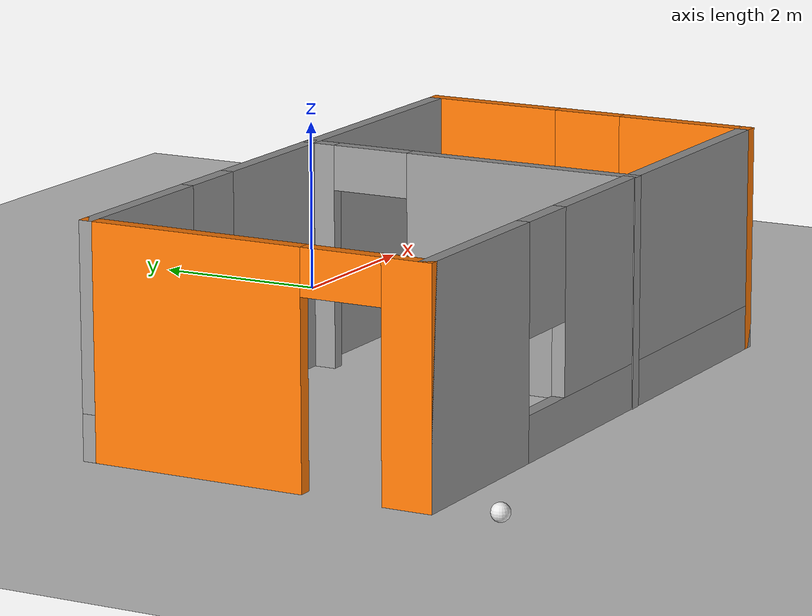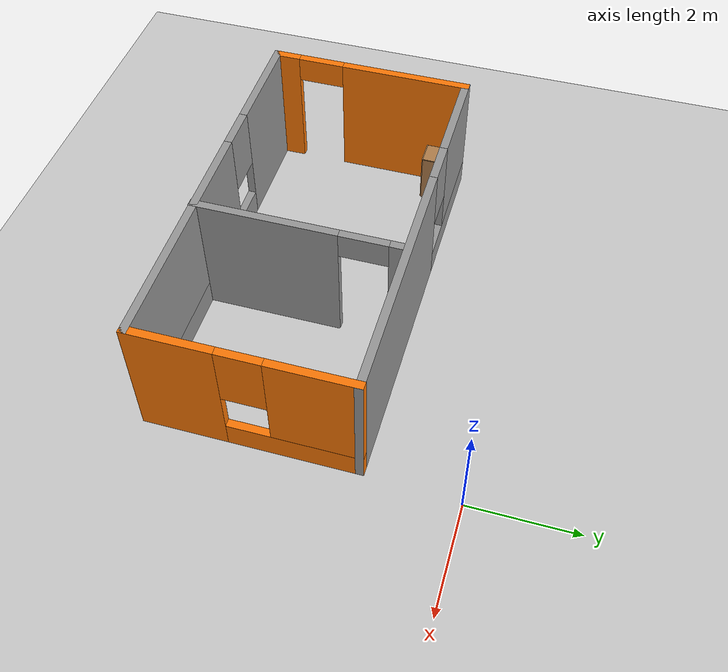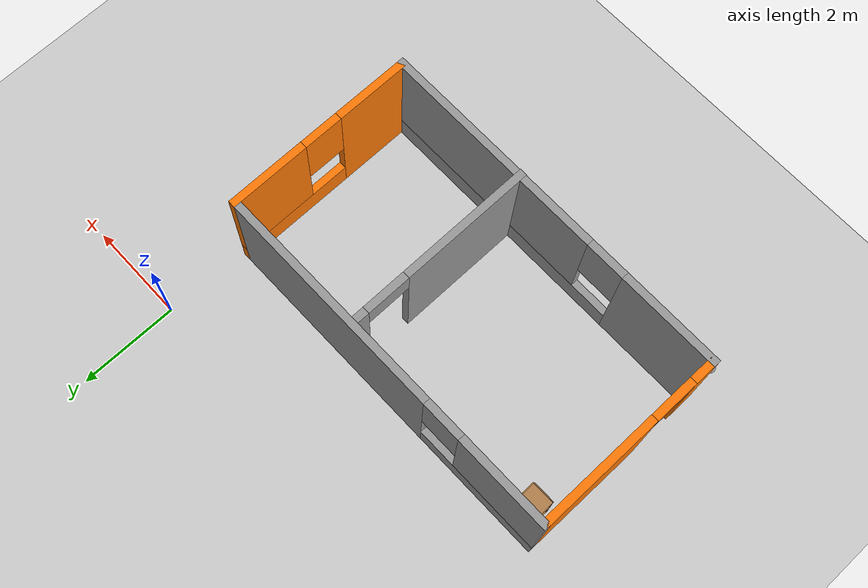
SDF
<sdf version="1.7">
 <world name="default">
  <model name="ground_plane">
   <static>1</static>
   <link name="link">
    <collision name="collision">
     <geometry><plane><normal>0 0 1</normal><size>100 100</size></plane></geometry>
     <surface>
      <contact><collide_bitmask>65535</collide_bitmask></contact>
      <friction><ode><mu>100</mu><mu2>50</mu2></ode></friction>
     </surface>
    </collision>
    <visual name="visual">
     <cast_shadows>0</cast_shadows>
     <geometry><plane><normal>0 0 1</normal><size>100 100</size></plane></geometry>
     <material>
      <script><uri>file://media/materials/scripts/gazebo.material</uri><name>Gazebo/Grey</name></script>
     </material>
    </visual>
   </link>
  </model>
  <model name="my_world.world">
   <pose>-3.7925 -2.8575 0 0 -0 0</pose>
   <link name="Wall_0">
    <pose>-3.7175 -0.8475 0 0 -0 -1.5708</pose>
    <visual name="Wall_0_Visual_0">
     <pose>-0.7275 0 1.25 0 -0 0</pose>
     <geometry><box><size>2.545 0.15 2.5</size></box></geometry>
     <material>
      <script><uri>file://media/materials/scripts/gazebo.material</uri><name>Gazebo/Grey</name></script>
      <ambient>0.996078 0.47451 0.0196078 1</ambient>
     </material>
     <meta><layer>0</layer></meta>
    </visual>
    <collision name="Wall_0_Collision_0">
     <geometry><box><size>2.545 0.15 2.5</size></box></geometry>
     <pose>-0.7275 0 1.25 0 -0 0</pose>
    </collision>
    <visual name="Wall_0_Visual_1">
     <pose>1.7225 0 1.25 0 -0 0</pose>
     <geometry><box><size>0.555 0.15 2.5</size></box></geometry>
     <material>
      <script><uri>file://media/materials/scripts/gazebo.material</uri><name>Gazebo/Grey</name></script>
      <ambient>0.996078 0.47451 0.0196078 1</ambient>
     </material>
     <meta><layer>0</layer></meta>
    </visual>
    <collision name="Wall_0_Collision_1">
     <geometry><box><size>0.555 0.15 2.5</size></box></geometry>
     <pose>1.7225 0 1.25 0 -0 0</pose>
    </collision>
    <visual name="Wall_0_Visual_2">
     <pose>0.995 0 2.25 0 -0 0</pose>
     <geometry><box><size>0.9 0.15 0.5</size></box></geometry>
     <material>
      <script><uri>file://media/materials/scripts/gazebo.material</uri><name>Gazebo/Grey</name></script>
      <ambient>0.996078 0.47451 0.0196078 1</ambient>
     </material>
     <meta><layer>0</layer></meta>
    </visual>
    <collision name="Wall_0_Collision_2">
     <geometry><box><size>0.9 0.15 0.5</size></box></geometry>
     <pose>0.995 0 2.25 0 -0 0</pose>
    </collision>
   </link>
   <link name="Wall_1">
    <pose>-0.0425 -2.7725 0 0 -0 0</pose>
    <visual name="Wall_1_Visual_0">
     <pose>-2.7225 0 1.25 0 -0 0</pose>
     <geometry><box><size>2.055 0.15 2.5</size></box></geometry>
     <material>
      <script><uri>file://media/materials/scripts/gazebo.material</uri><name>Gazebo/Grey</name></script>
      <ambient>1 1 1 1</ambient>
     </material>
     <meta><layer>0</layer></meta>
    </visual>
    <collision name="Wall_1_Collision_0">
     <geometry><box><size>2.055 0.15 2.5</size></box></geometry>
     <pose>-2.7225 0 1.25 0 -0 0</pose>
    </collision>
    <visual name="Wall_1_Visual_1">
     <pose>1.0275 0 0.25 0 -0 0</pose>
     <geometry><box><size>5.445 0.15 0.5</size></box></geometry>
     <material>
      <script><uri>file://media/materials/scripts/gazebo.material</uri><name>Gazebo/Grey</name></script>
      <ambient>1 1 1 1</ambient>
     </material>
     <meta><layer>0</layer></meta>
    </visual>
    <collision name="Wall_1_Collision_1">
     <geometry><box><size>5.445 0.15 0.5</size></box></geometry>
     <pose>1.0275 0 0.25 0 -0 0</pose>
    </collision>
    <visual name="Wall_1_Visual_2">
     <pose>1.4275 0 1.5 0 -0 0</pose>
     <geometry><box><size>4.645 0.15 2</size></box></geometry>
     <material>
      <script><uri>file://media/materials/scripts/gazebo.material</uri><name>Gazebo/Grey</name></script>
      <ambient>1 1 1 1</ambient>
     </material>
     <meta><layer>0</layer></meta>
    </visual>
    <collision name="Wall_1_Collision_2">
     <geometry><box><size>4.645 0.15 2</size></box></geometry>
     <pose>1.4275 0 1.5 0 -0 0</pose>
    </collision>
    <visual name="Wall_1_Visual_3">
     <pose>-1.295 0 1.9 0 -0 0</pose>
     <geometry><box><size>0.8 0.15 1.2</size></box></geometry>
     <material>
      <script><uri>file://media/materials/scripts/gazebo.material</uri><name>Gazebo/Grey</name></script>
      <ambient>1 1 1 1</ambient>
     </material>
     <meta><layer>0</layer></meta>
    </visual>
    <collision name="Wall_1_Collision_3">
     <geometry><box><size>0.8 0.15 1.2</size></box></geometry>
     <pose>-1.295 0 1.9 0 -0 0</pose>
    </collision>
   </link>
   <link name="Wall_2">
    <pose>3.6325 -0.8475 0 0 -0 1.5708</pose>
    <visual name="Wall_2_Visual_0">
     <pose>-1.2075 0 1.25 0 -0 0</pose>
     <geometry><box><size>1.585 0.15 2.5</size></box></geometry>
     <material>
      <script><uri>file://media/materials/scripts/gazebo.material</uri><name>Gazebo/Grey</name></script>
      <ambient>0.996078 0.47451 0.0196078 1</ambient>
     </material>
     <meta><layer>0</layer></meta>
    </visual>
    <collision name="Wall_2_Collision_0">
     <geometry><box><size>1.585 0.15 2.5</size></box></geometry>
     <pose>-1.2075 0 1.25 0 -0 0</pose>
    </collision>
    <visual name="Wall_2_Visual_1">
     <pose>0.7925 0 0.25 0 -0 0</pose>
     <geometry><box><size>2.415 0.15 0.5</size></box></geometry>
     <material>
      <script><uri>file://media/materials/scripts/gazebo.material</uri><name>Gazebo/Grey</name></script>
      <ambient>0.996078 0.47451 0.0196078 1</ambient>
     </material>
     <meta><layer>0</layer></meta>
    </visual>
    <collision name="Wall_2_Collision_1">
     <geometry><box><size>2.415 0.15 0.5</size></box></geometry>
     <pose>0.7925 0 0.25 0 -0 0</pose>
    </collision>
    <visual name="Wall_2_Visual_2">
     <pose>1.1925 0 1.5 0 -0 0</pose>
     <geometry><box><size>1.615 0.15 2</size></box></geometry>
     <material>
      <script><uri>file://media/materials/scripts/gazebo.material</uri><name>Gazebo/Grey</name></script>
      <ambient>0.996078 0.47451 0.0196078 1</ambient>
     </material>
     <meta><layer>0</layer></meta>
    </visual>
    <collision name="Wall_2_Collision_2">
     <geometry><box><size>1.615 0.15 2</size></box></geometry>
     <pose>1.1925 0 1.5 0 -0 0</pose>
    </collision>
    <visual name="Wall_2_Visual_3">
     <pose>-0.015 0 1.9 0 -0 0</pose>
     <geometry><box><size>0.8 0.15 1.2</size></box></geometry>
     <material>
      <script><uri>file://media/materials/scripts/gazebo.material</uri><name>Gazebo/Grey</name></script>
      <ambient>0.996078 0.47451 0.0196078 1</ambient>
     </material>
     <meta><layer>0</layer></meta>
    </visual>
    <collision name="Wall_2_Collision_3">
     <geometry><box><size>0.8 0.15 1.2</size></box></geometry>
     <pose>-0.015 0 1.9 0 -0 0</pose>
    </collision>
   </link>
   <link name="Wall_3">
    <pose>-0.0425 1.0775 0 0 -0 3.14159</pose>
    <visual name="Wall_3_Visual_0">
     <pose>-1.3675 0 1.25 0 -0 0</pose>
     <geometry><box><size>4.765 0.15 2.5</size></box></geometry>
     <material>
      <script><uri>file://media/materials/scripts/gazebo.material</uri><name>Gazebo/Grey</name></script>
      <ambient>1 1 1 1</ambient>
     </material>
     <meta><layer>0</layer></meta>
    </visual>
    <collision name="Wall_3_Collision_0">
     <geometry><box><size>4.765 0.15 2.5</size></box></geometry>
     <pose>-1.3675 0 1.25 0 -0 0</pose>
    </collision>
    <visual name="Wall_3_Visual_1">
     <pose>2.3825 0 0.25 0 -0 0</pose>
     <geometry><box><size>2.735 0.15 0.5</size></box></geometry>
     <material>
      <script><uri>file://media/materials/scripts/gazebo.material</uri><name>Gazebo/Grey</name></script>
      <ambient>1 1 1 1</ambient>
     </material>
     <meta><layer>0</layer></meta>
    </visual>
    <collision name="Wall_3_Collision_1">
     <geometry><box><size>2.735 0.15 0.5</size></box></geometry>
     <pose>2.3825 0 0.25 0 -0 0</pose>
    </collision>
    <visual name="Wall_3_Visual_2">
     <pose>2.7825 0 1.5 0 -0 0</pose>
     <geometry><box><size>1.935 0.15 2</size></box></geometry>
     <material>
      <script><uri>file://media/materials/scripts/gazebo.material</uri><name>Gazebo/Grey</name></script>
      <ambient>1 1 1 1</ambient>
     </material>
     <meta><layer>0</layer></meta>
    </visual>
    <collision name="Wall_3_Collision_2">
     <geometry><box><size>1.935 0.15 2</size></box></geometry>
     <pose>2.7825 0 1.5 0 -0 0</pose>
    </collision>
    <visual name="Wall_3_Visual_3">
     <pose>1.415 0 1.9 0 -0 0</pose>
     <geometry><box><size>0.8 0.15 1.2</size></box></geometry>
     <material>
      <script><uri>file://media/materials/scripts/gazebo.material</uri><name>Gazebo/Grey</name></script>
      <ambient>1 1 1 1</ambient>
     </material>
     <meta><layer>0</layer></meta>
    </visual>
    <collision name="Wall_3_Collision_3">
     <geometry><box><size>0.8 0.15 1.2</size></box></geometry>
     <pose>1.415 0 1.9 0 -0 0</pose>
    </collision>
   </link>
   <link name="Wall_5">
    <pose>0.7225 -0.8575 0 0 -0 1.5708</pose>
    <visual name="Wall_5_Visual_0">
     <pose>-0.6425 0 1.25 0 -0 0</pose>
     <geometry><box><size>2.715 0.15 2.5</size></box></geometry>
     <material>
      <script><uri>file://media/materials/scripts/gazebo.material</uri><name>Gazebo/Grey</name></script>
      <ambient>1 1 1 1</ambient>
     </material>
     <meta><layer>0</layer></meta>
    </visual>
    <collision name="Wall_5_Collision_0">
     <geometry><box><size>2.715 0.15 2.5</size></box></geometry>
     <pose>-0.6425 0 1.25 0 -0 0</pose>
    </collision>
    <visual name="Wall_5_Visual_1">
     <pose>1.8075 0 1.25 0 -0 0</pose>
     <geometry><box><size>0.385 0.15 2.5</size></box></geometry>
     <material>
      <script><uri>file://media/materials/scripts/gazebo.material</uri><name>Gazebo/Grey</name></script>
      <ambient>1 1 1 1</ambient>
     </material>
     <meta><layer>0</layer></meta>
    </visual>
    <collision name="Wall_5_Collision_1">
     <geometry><box><size>0.385 0.15 2.5</size></box></geometry>
     <pose>1.8075 0 1.25 0 -0 0</pose>
    </collision>
    <visual name="Wall_5_Visual_2">
     <pose>1.165 0 2.25 0 -0 0</pose>
     <geometry><box><size>0.9 0.15 0.5</size></box></geometry>
     <material>
      <script><uri>file://media/materials/scripts/gazebo.material</uri><name>Gazebo/Grey</name></script>
      <ambient>1 1 1 1</ambient>
     </material>
     <meta><layer>0</layer></meta>
    </visual>
    <collision name="Wall_5_Collision_2">
     <geometry><box><size>0.9 0.15 0.5</size></box></geometry>
     <pose>1.165 0 2.25 0 -0 0</pose>
    </collision>
   </link>
   <static>1</static>
  </model>
  <model name="my_ball">
   <pose>-7.47848 -6.39961 0.1 0 -0 0</pose>
   <link name="link_0">
    <inertial>
     <mass>1</mass>
     <inertia><ixx>0.1</ixx><ixy>0</ixy><ixz>0</ixz><iyy>0.1</iyy><iyz>0</iyz><izz>0.1</izz></inertia>
    </inertial>
    <collision name="collision"><geometry><sphere><radius>0.1</radius></sphere></geometry></collision>
    <visual name="visual">
     <geometry><sphere><radius>0.1</radius></sphere></geometry>
     <material>
      <script><uri>file://media/materials/scripts/gazebo.material</uri><name>Gazebo/White</name></script>
     </material>
    </visual>
   </link>
  </model>
  <model name="cabinet">
   <static>1</static>
   <link name="cabinet_bottom_plate">
    <inertial>
     <pose>0 0 -1 0 -0 0</pose>
     <inertia><ixx>2.05</ixx><ixy>0</ixy><ixz>0</ixz><iyy>2.05</iyy><iyz>0</iyz><izz>2.05</izz></inertia>
     <mass>25</mass>
    </inertial>
    <collision name="cabinet_bottom_plate_geom">
     <pose>0 0 0.01 0 -0 0</pose>
     <geometry><box><size>0.45 0.45 0.02</size></box></geometry>
    </collision>
    <visual name="cabinet_bottom_plate_geom_visual">
     <pose>0 0 0.01 0 -0 0</pose>
     <geometry><box><size>0.45 0.45 0.02</size></box></geometry>
     <material>
      <script><uri>file://media/materials/scripts/gazebo.material</uri><name>Gazebo/Wood</name></script>
     </material>
    </visual>
    <collision name="cabinet_bottom_plate_geom_cabinet_back_plate">
     <pose>0.235 0 0.51 0 -0 0</pose>
     <geometry><box><size>0.02 0.45 1.02</size></box></geometry>
    </collision>
    <visual name="cabinet_bottom_plate_geom_cabinet_back_plate_visual">
     <pose>0.235 0 0.51 0 -0 0</pose>
     <geometry><box><size>0.02 0.45 1.02</size></box></geometry>
     <material>
      <script><uri>file://media/materials/scripts/gazebo.material</uri><name>Gazebo/Wood</name></script>
     </material>
    </visual>
    <collision name="cabinet_bottom_plate_geom_cabinet_left_plate">
     <pose>0 0.235 0.51 0 -0 0</pose>
     <geometry><box><size>0.45 0.02 1.02</size></box></geometry>
    </collision>
    <visual name="cabinet_bottom_plate_geom_cabinet_left_plate_visual">
     <pose>0 0.235 0.51 0 -0 0</pose>
     <geometry><box><size>0.45 0.02 1.02</size></box></geometry>
     <material>
      <script><uri>file://media/materials/scripts/gazebo.material</uri><name>Gazebo/Wood</name></script>
     </material>
    </visual>
    <collision name="cabinet_bottom_plate_geom_cabinet_middle_plate">
     <pose>0 0 0.51 0 -0 0</pose>
     <geometry><box><size>0.45 0.45 0.02</size></box></geometry>
    </collision>
    <visual name="cabinet_bottom_plate_geom_cabinet_middle_plate_visual">
     <pose>0 0 0.51 0 -0 0</pose>
     <geometry><box><size>0.45 0.45 0.02</size></box></geometry>
     <material>
      <script><uri>file://media/materials/scripts/gazebo.material</uri><name>Gazebo/Wood</name></script>
     </material>
    </visual>
    <collision name="cabinet_bottom_plate_geom_cabinet_right_plate">
     <pose>0 -0.235 0.51 0 -0 0</pose>
     <geometry><box><size>0.45 0.02 1.02</size></box></geometry>
    </collision>
    <visual name="cabinet_bottom_plate_geom_cabinet_right_plate_visual">
     <pose>0 -0.235 0.51 0 -0 0</pose>
     <geometry><box><size>0.45 0.02 1.02</size></box></geometry>
     <material>
      <script><uri>file://media/materials/scripts/gazebo.material</uri><name>Gazebo/Wood</name></script>
     </material>
    </visual>
    <collision name="cabinet_bottom_plate_geom_cabinet_top_plate">
     <pose>0 0 1.01 0 -0 0</pose>
     <geometry><box><size>0.45 0.45 0.02</size></box></geometry>
    </collision>
    <visual name="cabinet_bottom_plate_geom_cabinet_top_plate_visual">
     <pose>0 0 1.01 0 -0 0</pose>
     <geometry><box><size>0.45 0.45 0.02</size></box></geometry>
     <material>
      <script><uri>file://media/materials/scripts/gazebo.material</uri><name>Gazebo/Wood</name></script>
     </material>
    </visual>
   </link>
   <pose>-7.08268 -2.18295 0 0 -0 0</pose>
  </model>
 </world>
</sdf>
